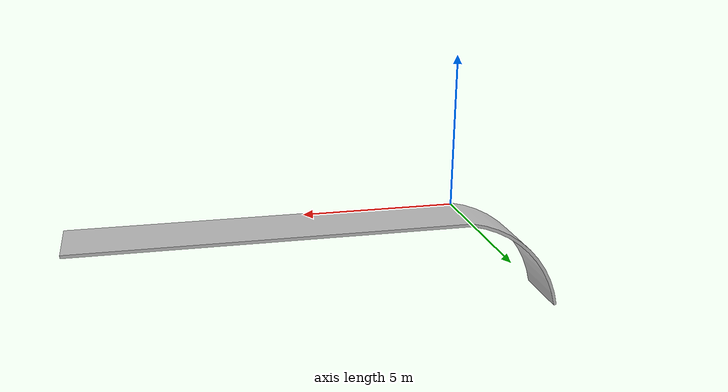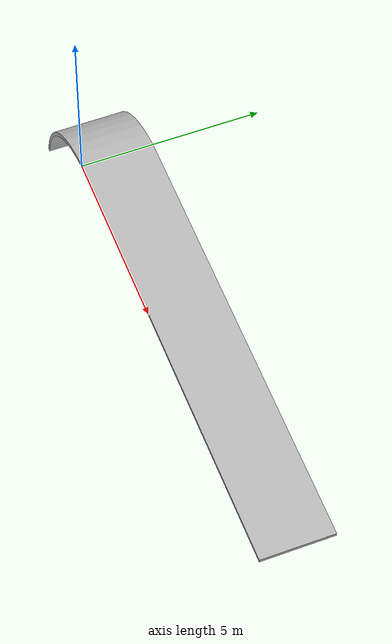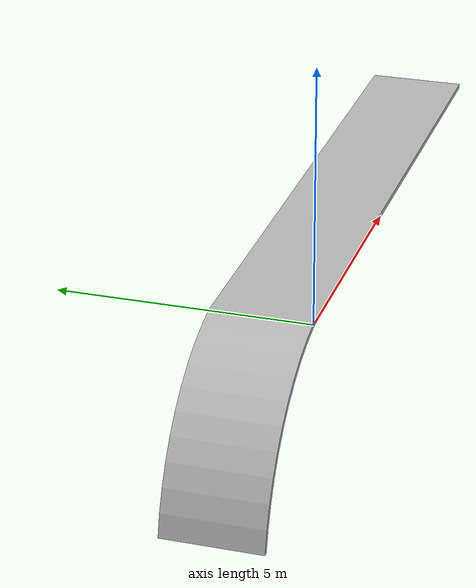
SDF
<?xml version="1.0" ?>
<sdf version="1.6">
  <model name="mywall2">
    <static>true</static>
    <link name="link">
      <collision name="collision">
        <geometry>
          <mesh>
            <scale>0.01 0.01 0.01</scale>
            <uri>model://mywall2/meshes/Pieza2.obj</uri>
          </mesh>
        </geometry>
      </collision>
      <visual name="visual">
        <geometry>

          <mesh>
            <scale>0.01 0.01 0.01</scale>
            <uri>model://mywall2/meshes/Pieza2.obj</uri>
          </mesh>
        </geometry>
      </visual>
    </link>
  </model>
</sdf>
